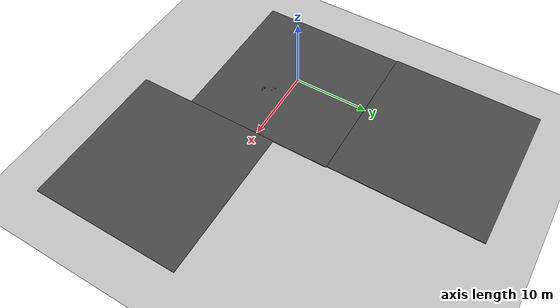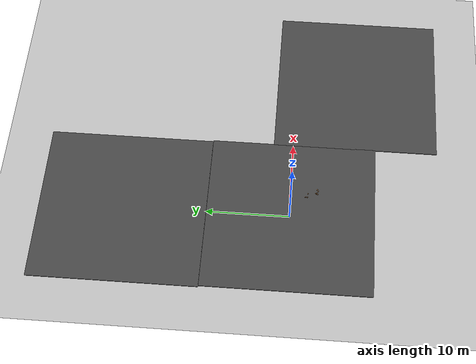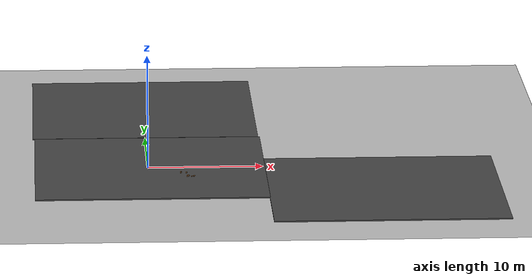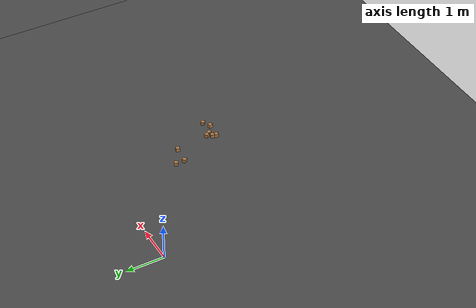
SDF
<sdf version="1.6">
 <world name="default">
  <light name="sun" type="directional">
   <pose>0 0 10 0 -0 0</pose>
   <diffuse>0.8 0.8 0.8 1</diffuse>
   <specular>0.2 0.2 0.2 1</specular>
   <attenuation>
    <range>1000</range>
    <constant>0.9</constant>
    <linear>0.01</linear>
    <quadratic>0.001</quadratic>
   </attenuation>
   <direction>-0.5 0.1 -0.9</direction>
  </light>
  <model name="ground_plane">
   <static>1</static>
   <link name="link">
    <collision name="collision">
     <geometry><plane><normal>0 0 1</normal><size>100 100</size></plane></geometry>
     <surface><friction><ode><mu>100</mu><mu2>50</mu2></ode></friction></surface>
    </collision>
    <visual name="visual">
     <cast_shadows>0</cast_shadows>
     <geometry><plane><normal>0 0 1</normal><size>100 100</size></plane></geometry>
     <material>
      <script><uri>file://media/materials/scripts/gazebo.material</uri><name>Gazebo/Grey</name></script>
     </material>
    </visual>
   </link>
  </model>
  <physics name="default_physics" default="0" type="ode">
   <max_step_size>0.01</max_step_size>
   <real_time_factor>1</real_time_factor>
   <real_time_update_rate>100</real_time_update_rate>
  </physics>
  <gravity>0 0 -9.8</gravity>
  <magnetic_field>6e-06 2.3e-05 -4.2e-05</magnetic_field>
  <atmosphere type="adiabatic"/>
  <scene><ambient>0.4 0.4 0.4 1</ambient><background>0.7 0.7 0.7 1</background><shadows>1</shadows></scene>
  <audio><device>default</device></audio>
  <spherical_coordinates>
   <surface_model>EARTH_WGS84</surface_model>
   <latitude_deg>0</latitude_deg>
   <longitude_deg>0</longitude_deg>
   <elevation>0</elevation>
   <heading_deg>0</heading_deg>
  </spherical_coordinates>
  <model name="wood_cube_10cm">
   <link name="link">
    <pose>0 0 0.05 0 -0 0</pose>
    <inertial>
     <mass>0.5167</mass>
     <inertia>
      <ixx>0.000861167</ixx>
      <ixy>0</ixy>
      <ixz>0</ixz>
      <iyy>0.000861167</iyy>
      <iyz>0</iyz>
      <izz>0.000861167</izz>
     </inertia>
    </inertial>
    <collision name="collision">
     <geometry><box><size>0.1 0.1 0.1</size></box></geometry>
     <surface><contact><ode><max_vel>0.1</max_vel><min_depth>0.001</min_depth></ode></contact></surface>
    </collision>
    <visual name="visual">
     <geometry><box><size>0.1 0.1 0.1</size></box></geometry>
     <material>
      <script><uri>file://media/materials/scripts/gazebo.material</uri><name>Gazebo/Wood</name></script>
     </material>
    </visual>
   </link>
   <pose>3.32808 -3.18587 0.099358 -1.59347 1.56475 2.83838</pose>
  </model>
  <model name="wood_cube_10cm_clone">
   <link name="link">
    <pose>0 0 0.05 0 -0 0</pose>
    <inertial>
     <mass>0.5167</mass>
     <inertia>
      <ixx>0.000861167</ixx>
      <ixy>0</ixy>
      <ixz>0</ixz>
      <iyy>0.000861167</iyy>
      <iyz>0</iyz>
      <izz>0.000861167</izz>
     </inertia>
    </inertial>
    <collision name="collision">
     <geometry><box><size>0.1 0.1 0.1</size></box></geometry>
     <surface><contact><ode><max_vel>0.1</max_vel><min_depth>0.001</min_depth></ode></contact></surface>
    </collision>
    <visual name="visual">
     <geometry><box><size>0.1 0.1 0.1</size></box></geometry>
     <material>
      <script><uri>file://media/materials/scripts/gazebo.material</uri><name>Gazebo/Wood</name></script>
     </material>
    </visual>
   </link>
   <pose>3.43121 -3.07349 0.09976 0.855036 1.56639 0.200648</pose>
  </model>
  <model name="wood_cube_10cm_clone_0">
   <link name="link">
    <pose>0 0 0.05 0 -0 0</pose>
    <inertial>
     <mass>0.5167</mass>
     <inertia>
      <ixx>0.000861167</ixx>
      <ixy>0</ixy>
      <ixz>0</ixz>
      <iyy>0.000861167</iyy>
      <iyz>0</iyz>
      <izz>0.000861167</izz>
     </inertia>
    </inertial>
    <collision name="collision">
     <geometry><box><size>0.1 0.1 0.1</size></box></geometry>
     <surface><contact><ode><max_vel>0.1</max_vel><min_depth>0.001</min_depth></ode></contact></surface>
    </collision>
    <visual name="visual">
     <geometry><box><size>0.1 0.1 0.1</size></box></geometry>
     <material>
      <script><uri>file://media/materials/scripts/gazebo.material</uri><name>Gazebo/Wood</name></script>
     </material>
    </visual>
   </link>
   <pose>3.33901 -3.12818 0.049432 -0.004696 -0.003932 -1.82088</pose>
  </model>
  <model name="wood_cube_10cm_clone_1">
   <link name="link">
    <pose>0 0 0.05 0 -0 0</pose>
    <inertial>
     <mass>0.5167</mass>
     <inertia>
      <ixx>0.000861167</ixx>
      <ixy>0</ixy>
      <ixz>0</ixz>
      <iyy>0.000861167</iyy>
      <iyz>0</iyz>
      <izz>0.000861167</izz>
     </inertia>
    </inertial>
    <collision name="collision">
     <geometry><box><size>0.1 0.1 0.1</size></box></geometry>
     <surface><contact><ode><max_vel>0.1</max_vel><min_depth>0.001</min_depth></ode></contact></surface>
    </collision>
    <visual name="visual">
     <geometry><box><size>0.1 0.1 0.1</size></box></geometry>
     <material>
      <script><uri>file://media/materials/scripts/gazebo.material</uri><name>Gazebo/Wood</name></script>
     </material>
    </visual>
   </link>
   <pose>3.3846 -2.96363 0.099248 -0.736174 1.56812 -1.71487</pose>
  </model>
  <model name="wood_cube_10cm_clone_2">
   <link name="link">
    <pose>0 0 0.05 0 -0 0</pose>
    <inertial>
     <mass>0.5167</mass>
     <inertia>
      <ixx>0.000861167</ixx>
      <ixy>0</ixy>
      <ixz>0</ixz>
      <iyy>0.000861167</iyy>
      <iyz>0</iyz>
      <izz>0.000861167</izz>
     </inertia>
    </inertial>
    <collision name="collision">
     <geometry><box><size>0.1 0.1 0.1</size></box></geometry>
     <surface><contact><ode><max_vel>0.1</max_vel><min_depth>0.001</min_depth></ode></contact></surface>
    </collision>
    <visual name="visual">
     <geometry><box><size>0.1 0.1 0.1</size></box></geometry>
     <material>
      <script><uri>file://media/materials/scripts/gazebo.material</uri><name>Gazebo/Wood</name></script>
     </material>
    </visual>
   </link>
   <pose>3.67975 -3.28546 0.099 0 1.56769 0.186017</pose>
  </model>
  <model name="wood_cube_10cm_clone_3">
   <link name="link">
    <pose>0 0 0.05 0 -0 0</pose>
    <inertial>
     <mass>0.5167</mass>
     <inertia>
      <ixx>0.000861167</ixx>
      <ixy>0</ixy>
      <ixz>0</ixz>
      <iyy>0.000861167</iyy>
      <iyz>0</iyz>
      <izz>0.000861167</izz>
     </inertia>
    </inertial>
    <collision name="collision">
     <geometry><box><size>0.1 0.1 0.1</size></box></geometry>
     <surface><contact><ode><max_vel>0.1</max_vel><min_depth>0.001</min_depth></ode></contact></surface>
    </collision>
    <visual name="visual">
     <geometry><box><size>0.1 0.1 0.1</size></box></geometry>
     <material>
      <script><uri>file://media/materials/scripts/gazebo.material</uri><name>Gazebo/Wood</name></script>
     </material>
    </visual>
   </link>
   <pose>3.8813 -3.12532 0.099021 -1.57079 0 -2.37887</pose>
  </model>
  <model name="wood_cube_10cm_clone_4">
   <link name="link">
    <pose>0 0 0.05 0 -0 0</pose>
    <inertial>
     <mass>0.5167</mass>
     <inertia>
      <ixx>0.000861167</ixx>
      <ixy>0</ixy>
      <ixz>0</ixz>
      <iyy>0.000861167</iyy>
      <iyz>0</iyz>
      <izz>0.000861167</izz>
     </inertia>
    </inertial>
    <collision name="collision">
     <geometry><box><size>0.1 0.1 0.1</size></box></geometry>
     <surface><contact><ode><max_vel>0.1</max_vel><min_depth>0.001</min_depth></ode></contact></surface>
    </collision>
    <visual name="visual">
     <geometry><box><size>0.1 0.1 0.1</size></box></geometry>
     <material>
      <script><uri>file://media/materials/scripts/gazebo.material</uri><name>Gazebo/Wood</name></script>
     </material>
    </visual>
   </link>
   <pose>2.84965 -1.80283 0.099168 -1.56835 -0.002818 1.14506</pose>
  </model>
  <model name="wood_cube_10cm_clone_5">
   <link name="link">
    <pose>0 0 0.05 0 -0 0</pose>
    <inertial>
     <mass>0.5167</mass>
     <inertia>
      <ixx>0.000861167</ixx>
      <ixy>0</ixy>
      <ixz>0</ixz>
      <iyy>0.000861167</iyy>
      <iyz>0</iyz>
      <izz>0.000861167</izz>
     </inertia>
    </inertial>
    <collision name="collision">
     <geometry><box><size>0.1 0.1 0.1</size></box></geometry>
     <surface><contact><ode><max_vel>0.1</max_vel><min_depth>0.001</min_depth></ode></contact></surface>
    </collision>
    <visual name="visual">
     <geometry><box><size>0.1 0.1 0.1</size></box></geometry>
     <material>
      <script><uri>file://media/materials/scripts/gazebo.material</uri><name>Gazebo/Wood</name></script>
     </material>
    </visual>
   </link>
   <pose>3.27072 -2.12132 0.09973 -3.01611 -1.5642 1.22459</pose>
  </model>
  <model name="wood_cube_10cm_clone_6">
   <link name="link">
    <pose>0 0 0.05 0 -0 0</pose>
    <inertial>
     <mass>0.5167</mass>
     <inertia>
      <ixx>0.000861167</ixx>
      <ixy>0</ixy>
      <ixz>0</ixz>
      <iyy>0.000861167</iyy>
      <iyz>0</iyz>
      <izz>0.000861167</izz>
     </inertia>
    </inertial>
    <collision name="collision">
     <geometry><box><size>0.1 0.1 0.1</size></box></geometry>
     <surface><contact><ode><max_vel>0.1</max_vel><min_depth>0.001</min_depth></ode></contact></surface>
    </collision>
    <visual name="visual">
     <geometry><box><size>0.1 0.1 0.1</size></box></geometry>
     <material>
      <script><uri>file://media/materials/scripts/gazebo.material</uri><name>Gazebo/Wood</name></script>
     </material>
    </visual>
   </link>
   <pose>2.8488 -1.99558 0.099035 1.57079 6.8e-05 -0.914863</pose>
  </model>
  <model name="asphalt_plane">
   <static>1</static>
   <link name="link">
    <collision name="collision"><geometry><box><size>20 20 0.1</size></box></geometry></collision>
    <visual name="visual">
     <cast_shadows>0</cast_shadows>
     <geometry><box><size>20 20 0.1</size></box></geometry>
     <material>
      <script>
       <uri>model://asphalt_plane/materials/scripts</uri>
       <uri>model://asphalt_plane/materials/textures</uri>
       <name>vrc/asphalt</name>
      </script>
     </material>
    </visual>
   </link>
   <pose>0.184177 -0.079106 0 0 -0 0</pose>
  </model>
  <model name="asphalt_plane_0">
   <static>1</static>
   <link name="link">
    <collision name="collision"><geometry><box><size>20 20 0.1</size></box></geometry></collision>
    <visual name="visual">
     <cast_shadows>0</cast_shadows>
     <geometry><box><size>20 20 0.1</size></box></geometry>
     <material>
      <script>
       <uri>model://asphalt_plane/materials/scripts</uri>
       <uri>model://asphalt_plane/materials/textures</uri>
       <name>vrc/asphalt</name>
      </script>
     </material>
    </visual>
   </link>
   <pose>20.1303 -7.58242 0 0 -0 0</pose>
  </model>
  <model name="asphalt_plane_1">
   <static>1</static>
   <link name="link">
    <collision name="collision"><geometry><box><size>20 20 0.1</size></box></geometry></collision>
    <visual name="visual">
     <cast_shadows>0</cast_shadows>
     <geometry><box><size>20 20 0.1</size></box></geometry>
     <material>
      <script>
       <uri>model://asphalt_plane/materials/scripts</uri>
       <uri>model://asphalt_plane/materials/textures</uri>
       <name>vrc/asphalt</name>
      </script>
     </material>
    </visual>
   </link>
   <pose>0.044834 19.9497 0 0 -0 0</pose>
  </model>
 </world>
</sdf>
